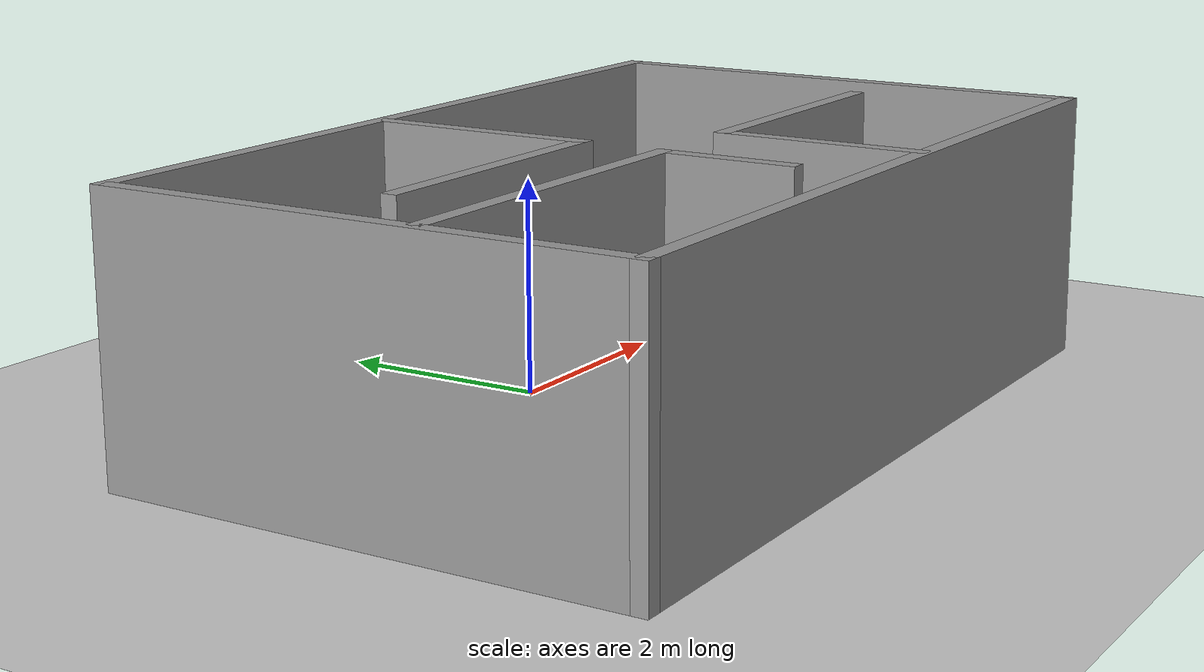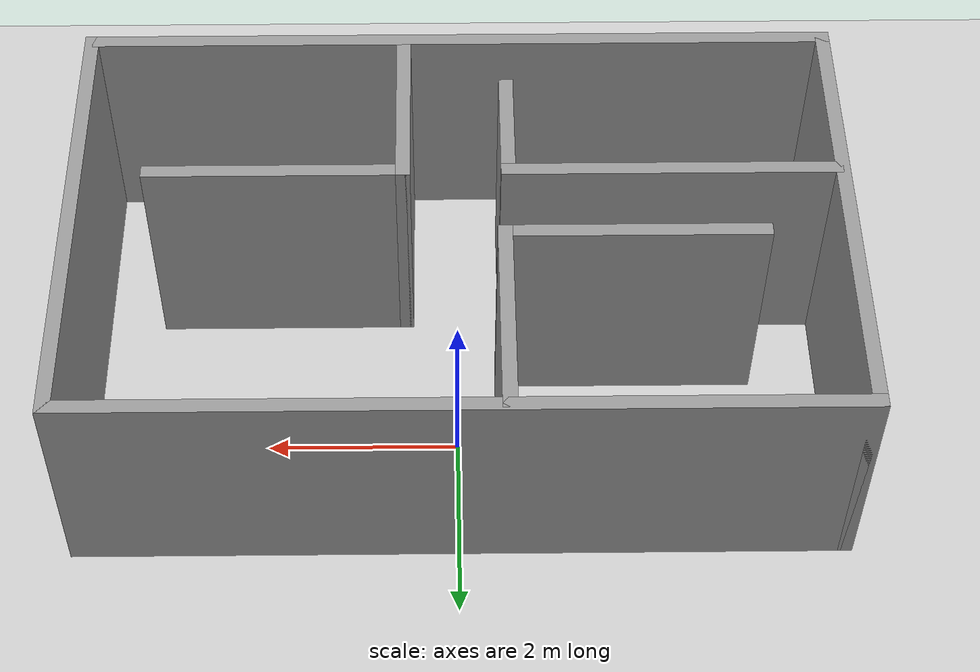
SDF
<sdf version="1.7">
 <world name="default">
  <light name="sun" type="directional">
   <pose>0 0 10 0 -0 0</pose>
   <diffuse>0.8 0.8 0.8 1</diffuse>
   <specular>0.2 0.2 0.2 1</specular>
   <attenuation>
    <range>1000</range>
    <constant>0.9</constant>
    <linear>0.01</linear>
    <quadratic>0.001</quadratic>
   </attenuation>
   <direction>-0.5 0.1 -0.9</direction>
   <spot><inner_angle>0</inner_angle><outer_angle>0</outer_angle><falloff>0</falloff></spot>
  </light>
  <model name="ground_plane">
   <static>1</static>
   <link name="link">
    <collision name="collision">
     <geometry><plane><normal>0 0 1</normal><size>100 100</size></plane></geometry>
     <surface>
      <contact><collide_bitmask>65535</collide_bitmask></contact>
      <friction><ode><mu>100</mu><mu2>50</mu2></ode></friction>
     </surface>
    </collision>
    <visual name="visual">
     <cast_shadows>0</cast_shadows>
     <geometry><plane><normal>0 0 1</normal><size>100 100</size></plane></geometry>
     <material>
      <script><uri>file://media/materials/scripts/gazebo.material</uri><name>Gazebo/Grey</name></script>
     </material>
    </visual>
   </link>
  </model>
  <gravity>0 0 -9.8</gravity>
  <magnetic_field>6e-06 2.3e-05 -4.2e-05</magnetic_field>
  <atmosphere type="adiabatic"/>
  <physics type="ode">
   <max_step_size>0.001</max_step_size>
   <real_time_factor>1</real_time_factor>
   <real_time_update_rate>1000</real_time_update_rate>
  </physics>
  <scene><ambient>0.4 0.4 0.4 1</ambient><background>0.7 0.7 0.7 1</background><shadows>1</shadows></scene>
  <audio><device>default</device></audio>
  <spherical_coordinates>
   <surface_model>EARTH_WGS84</surface_model>
   <latitude_deg>0</latitude_deg>
   <longitude_deg>0</longitude_deg>
   <elevation>0</elevation>
   <heading_deg>0</heading_deg>
  </spherical_coordinates>
  <model name="room">
   <pose>-0.027637 0.028717 0 0 -0 0</pose>
   <link name="Wall_0">
    <collision name="Wall_0_Collision">
     <geometry><box><size>8 0.15 2.5</size></box></geometry>
     <pose>0 0 1.25 0 -0 0</pose>
    </collision>
    <visual name="Wall_0_Visual">
     <pose>0 0 1.25 0 -0 0</pose>
     <geometry><box><size>8 0.15 2.5</size></box></geometry>
     <material>
      <script><uri>file://media/materials/scripts/gazebo.material</uri><name>Gazebo/Grey</name></script>
      <ambient>1 1 1 1</ambient>
     </material>
     <meta><layer>0</layer></meta>
    </visual>
    <pose>-0 1.2275 0 0 -0 0</pose>
   </link>
   <link name="Wall_1">
    <collision name="Wall_1_Collision">
     <geometry><box><size>5 0.15 2.5</size></box></geometry>
     <pose>0 0 1.25 0 -0 0</pose>
    </collision>
    <visual name="Wall_1_Visual">
     <pose>0 0 1.25 0 -0 0</pose>
     <geometry><box><size>5 0.15 2.5</size></box></geometry>
     <material>
      <script><uri>file://media/materials/scripts/gazebo.material</uri><name>Gazebo/Grey</name></script>
      <ambient>1 1 1 1</ambient>
     </material>
     <meta><layer>0</layer></meta>
    </visual>
    <pose>3.925 -1.1975 0 0 -0 -1.5708</pose>
   </link>
   <link name="Wall_11">
    <collision name="Wall_11_Collision">
     <geometry><box><size>2 0.15 2.5</size></box></geometry>
     <pose>0 0 1.25 0 -0 0</pose>
    </collision>
    <visual name="Wall_11_Visual">
     <pose>0 0 1.25 0 -0 0</pose>
     <geometry><box><size>2 0.15 2.5</size></box></geometry>
     <material>
      <script><uri>file://media/materials/scripts/gazebo.material</uri><name>Gazebo/Grey</name></script>
      <ambient>1 1 1 1</ambient>
     </material>
     <meta><layer>0</layer></meta>
    </visual>
    <pose>0.575 -2.6575 0 0 -0 1.5708</pose>
   </link>
   <link name="Wall_12">
    <collision name="Wall_12_Collision">
     <geometry><box><size>2.75 0.15 2.5</size></box></geometry>
     <pose>0 0 1.25 0 -0 0</pose>
    </collision>
    <visual name="Wall_12_Visual">
     <pose>0 0 1.25 0 -0 0</pose>
     <geometry><box><size>2.75 0.15 2.5</size></box></geometry>
     <material>
      <script><uri>file://media/materials/scripts/gazebo.material</uri><name>Gazebo/Grey</name></script>
      <ambient>1 1 1 1</ambient>
     </material>
     <meta><layer>0</layer></meta>
    </visual>
    <pose>1.875 -1.7325 0 0 -0 0</pose>
   </link>
   <link name="Wall_2">
    <collision name="Wall_2_Collision">
     <geometry><box><size>8 0.15 2.5</size></box></geometry>
     <pose>0 0 1.25 0 -0 0</pose>
    </collision>
    <visual name="Wall_2_Visual">
     <pose>0 0 1.25 0 -0 0</pose>
     <geometry><box><size>8 0.15 2.5</size></box></geometry>
     <material>
      <script><uri>file://media/materials/scripts/gazebo.material</uri><name>Gazebo/Grey</name></script>
      <ambient>1 1 1 1</ambient>
     </material>
     <meta><layer>0</layer></meta>
    </visual>
    <pose>-0 -3.6225 0 0 -0 3.14159</pose>
   </link>
   <link name="Wall_3">
    <collision name="Wall_3_Collision">
     <geometry><box><size>5 0.15 2.5</size></box></geometry>
     <pose>0 0 1.25 0 -0 0</pose>
    </collision>
    <visual name="Wall_3_Visual">
     <pose>0 0 1.25 0 -0 0</pose>
     <geometry><box><size>5 0.15 2.5</size></box></geometry>
     <material>
      <script><uri>file://media/materials/scripts/gazebo.material</uri><name>Gazebo/Grey</name></script>
      <ambient>1 1 1 1</ambient>
     </material>
     <meta><layer>0</layer></meta>
    </visual>
    <pose>-3.925 -1.1975 0 0 -0 1.5708</pose>
   </link>
   <link name="Wall_5">
    <collision name="Wall_5_Collision">
     <geometry><box><size>2.25 0.15 2.5</size></box></geometry>
     <pose>0 0 1.25 0 -0 0</pose>
    </collision>
    <visual name="Wall_5_Visual">
     <pose>0 0 1.25 0 -0 0</pose>
     <geometry><box><size>2.25 0.15 2.5</size></box></geometry>
     <material>
      <script><uri>file://media/materials/scripts/gazebo.material</uri><name>Gazebo/Grey</name></script>
      <ambient>1 1 1 1</ambient>
     </material>
     <meta><layer>0</layer></meta>
    </visual>
    <pose>-0.455 0.1475 0 0 -0 -1.5708</pose>
   </link>
   <link name="Wall_6">
    <collision name="Wall_6_Collision">
     <geometry><box><size>2.75 0.15 2.5</size></box></geometry>
     <pose>0 0 1.25 0 -0 0</pose>
    </collision>
    <visual name="Wall_6_Visual">
     <pose>0 0 1.25 0 -0 0</pose>
     <geometry><box><size>2.75 0.15 2.5</size></box></geometry>
     <material>
      <script><uri>file://media/materials/scripts/gazebo.material</uri><name>Gazebo/Grey</name></script>
      <ambient>1 1 1 1</ambient>
     </material>
     <meta><layer>0</layer></meta>
    </visual>
    <pose>-1.755 -0.9025 0 0 -0 3.14159</pose>
   </link>
   <link name="Wall_8">
    <collision name="Wall_8_Collision">
     <geometry><box><size>3.5 0.15 2.5</size></box></geometry>
     <pose>0 0 1.25 0 -0 0</pose>
    </collision>
    <visual name="Wall_8_Visual">
     <pose>0 0 1.25 0 -0 0</pose>
     <geometry><box><size>3.5 0.15 2.5</size></box></geometry>
     <material>
      <script><uri>file://media/materials/scripts/gazebo.material</uri><name>Gazebo/Grey</name></script>
      <ambient>1 1 1 1</ambient>
     </material>
     <meta><layer>0</layer></meta>
    </visual>
    <pose>-2.18 -1.7325 0 0 -0 0</pose>
   </link>
   <link name="Wall_9">
    <collision name="Wall_9_Collision">
     <geometry><box><size>1.2 0.15 2.5</size></box></geometry>
     <pose>0 0 1.25 0 -0 0</pose>
    </collision>
    <visual name="Wall_9_Visual">
     <pose>0 0 1.25 0 -0 0</pose>
     <geometry><box><size>1.2 0.15 2.5</size></box></geometry>
     <material>
      <script><uri>file://media/materials/scripts/gazebo.material</uri><name>Gazebo/Grey</name></script>
      <ambient>1 1 1 1</ambient>
     </material>
     <meta><layer>0</layer></meta>
    </visual>
    <pose>-0.505 -2.4075 0 0 -0 -1.5708</pose>
   </link>
   <static>1</static>
  </model>
 </world>
</sdf>
